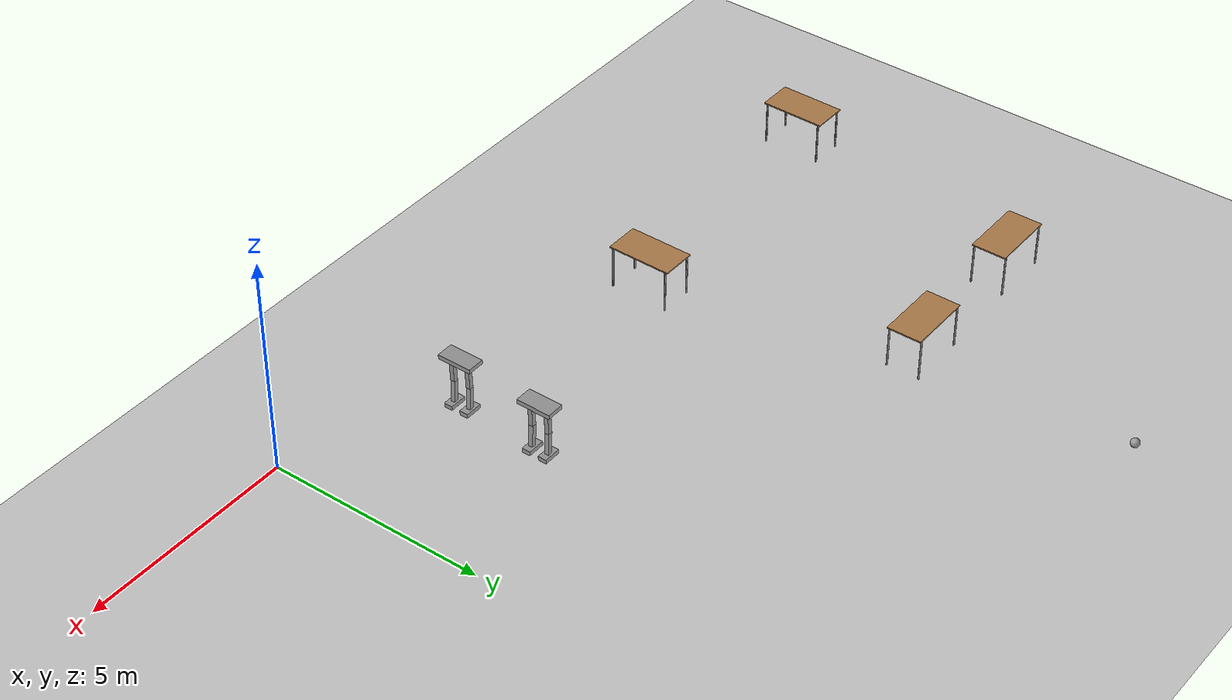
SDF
<sdf version="1.6">
 <world name="default">
  <model name="ground_plane">
   <static>1</static>
   <link name="link">
    <collision name="collision">
     <geometry><plane><normal>0 0 1</normal><size>100 100</size></plane></geometry>
     <surface>
      <contact><collide_bitmask>65535</collide_bitmask></contact>
      <friction><ode><mu>100</mu><mu2>50</mu2></ode></friction>
     </surface>
    </collision>
    <visual name="visual">
     <cast_shadows>0</cast_shadows>
     <geometry><plane><normal>0 0 1</normal><size>100 100</size></plane></geometry>
     <material>
      <script><uri>file://media/materials/scripts/gazebo.material</uri><name>Gazebo/Grey</name></script>
     </material>
    </visual>
   </link>
  </model>
  <model name="HumanoidRobot">
   <link name="link_0">
    <inertial>
     <mass>1</mass>
     <inertia>
      <ixx>0.166667</ixx>
      <ixy>0</ixy>
      <ixz>0</ixz>
      <iyy>0.166667</iyy>
      <iyz>0</iyz>
      <izz>0.166667</izz>
     </inertia>
    </inertial>
    <pose>0 0 1.2 0 -0 0</pose>
    <visual name="visual">
     <geometry><box><size>0.4 0.8 0.1</size></box></geometry>
     <material>
      <lighting>1</lighting>
      <script><uri>file://media/materials/scripts/gazebo.material</uri><name>Gazebo/Grey</name></script>
      <shader type="vertex"><normal_map>__default__</normal_map></shader>
      <ambient>0.3 0.3 0.3 1</ambient>
      <diffuse>0.7 0.7 0.7 1</diffuse>
      <specular>0.01 0.01 0.01 1</specular>
      <emissive>0 0 0 1</emissive>
     </material>
    </visual>
    <collision name="collision">
     <geometry><box><size>0.4 0.8 0.1</size></box></geometry>
     <surface>
      <friction>
       <ode><mu>1</mu><mu2>1</mu2><fdir1>0 0 0</fdir1><slip1>0</slip1><slip2>0</slip2></ode>
       <torsional>
        <coefficient>1</coefficient>
        <patch_radius>0</patch_radius>
        <surface_radius>0</surface_radius>
        <use_patch_radius>1</use_patch_radius>
        <ode><slip>0</slip></ode>
       </torsional>
      </friction>
      <bounce><restitution_coefficient>0</restitution_coefficient><threshold>1e+06</threshold></bounce>
      <contact>
       <collide_without_contact>0</collide_without_contact>
       <collide_without_contact_bitmask>1</collide_without_contact_bitmask>
       <collide_bitmask>1</collide_bitmask>
       <ode>
        <soft_cfm>0</soft_cfm>
        <soft_erp>0.2</soft_erp>
        <kp>1e+13</kp>
        <kd>1</kd>
        <max_vel>0.01</max_vel>
        <min_depth>0</min_depth>
       </ode>
       <bullet>
        <split_impulse>1</split_impulse>
        <split_impulse_penetration_threshold>-0.01</split_impulse_penetration_threshold>
        <soft_cfm>0</soft_cfm>
        <soft_erp>0.2</soft_erp>
        <kp>1e+13</kp>
        <kd>1</kd>
       </bullet>
      </contact>
     </surface>
    </collision>
   </link>
   <link name="link_0_clone">
    <inertial>
     <mass>1</mass>
     <inertia>
      <ixx>0.166667</ixx>
      <ixy>0</ixy>
      <ixz>0</ixz>
      <iyy>0.166667</iyy>
      <iyz>0</iyz>
      <izz>0.166667</izz>
     </inertia>
    </inertial>
    <pose>0 0.2 0 0 -0 0</pose>
    <visual name="visual">
     <geometry><box><size>0.4 0.2 0.1</size></box></geometry>
     <material>
      <lighting>1</lighting>
      <script><uri>file://media/materials/scripts/gazebo.material</uri><name>Gazebo/Grey</name></script>
      <shader type="vertex"><normal_map>__default__</normal_map></shader>
      <ambient>0.3 0.3 0.3 1</ambient>
      <diffuse>0.7 0.7 0.7 1</diffuse>
      <specular>0.01 0.01 0.01 1</specular>
      <emissive>0 0 0 1</emissive>
     </material>
    </visual>
    <collision name="collision">
     <geometry><box><size>0.4 0.2 0.1</size></box></geometry>
     <surface>
      <friction>
       <ode><mu>1</mu><mu2>1</mu2><fdir1>0 0 0</fdir1><slip1>0</slip1><slip2>0</slip2></ode>
       <torsional>
        <coefficient>1</coefficient>
        <patch_radius>0</patch_radius>
        <surface_radius>0</surface_radius>
        <use_patch_radius>1</use_patch_radius>
        <ode><slip>0</slip></ode>
       </torsional>
      </friction>
      <bounce><restitution_coefficient>0</restitution_coefficient><threshold>1e+06</threshold></bounce>
      <contact>
       <collide_without_contact>0</collide_without_contact>
       <collide_without_contact_bitmask>1</collide_without_contact_bitmask>
       <collide_bitmask>1</collide_bitmask>
       <ode>
        <soft_cfm>0</soft_cfm>
        <soft_erp>0.2</soft_erp>
        <kp>1e+13</kp>
        <kd>1</kd>
        <max_vel>0.01</max_vel>
        <min_depth>0</min_depth>
       </ode>
       <bullet>
        <split_impulse>1</split_impulse>
        <split_impulse_penetration_threshold>-0.01</split_impulse_penetration_threshold>
        <soft_cfm>0</soft_cfm>
        <soft_erp>0.2</soft_erp>
        <kp>1e+13</kp>
        <kd>1</kd>
       </bullet>
      </contact>
     </surface>
    </collision>
   </link>
   <link name="link_0_clone_clone">
    <inertial>
     <mass>1</mass>
     <inertia>
      <ixx>0.166667</ixx>
      <ixy>0</ixy>
      <ixz>0</ixz>
      <iyy>0.166667</iyy>
      <iyz>0</iyz>
      <izz>0.166667</izz>
     </inertia>
    </inertial>
    <pose>0 -0.2 0 0 -0 0</pose>
    <visual name="visual">
     <geometry><box><size>0.4 0.2 0.1</size></box></geometry>
     <material>
      <lighting>1</lighting>
      <script><uri>file://media/materials/scripts/gazebo.material</uri><name>Gazebo/Grey</name></script>
      <shader type="vertex"><normal_map>__default__</normal_map></shader>
      <ambient>0.3 0.3 0.3 1</ambient>
      <diffuse>0.7 0.7 0.7 1</diffuse>
      <specular>0.01 0.01 0.01 1</specular>
      <emissive>0 0 0 1</emissive>
     </material>
    </visual>
    <collision name="collision">
     <geometry><box><size>0.4 0.2 0.1</size></box></geometry>
     <surface>
      <friction>
       <ode><mu>1</mu><mu2>1</mu2><fdir1>0 0 0</fdir1><slip1>0</slip1><slip2>0</slip2></ode>
       <torsional>
        <coefficient>1</coefficient>
        <patch_radius>0</patch_radius>
        <surface_radius>0</surface_radius>
        <use_patch_radius>1</use_patch_radius>
        <ode><slip>0</slip></ode>
       </torsional>
      </friction>
      <bounce><restitution_coefficient>0</restitution_coefficient><threshold>1e+06</threshold></bounce>
      <contact>
       <collide_without_contact>0</collide_without_contact>
       <collide_without_contact_bitmask>1</collide_without_contact_bitmask>
       <collide_bitmask>1</collide_bitmask>
       <ode>
        <soft_cfm>0</soft_cfm>
        <soft_erp>0.2</soft_erp>
        <kp>1e+13</kp>
        <kd>1</kd>
        <max_vel>0.01</max_vel>
        <min_depth>0</min_depth>
       </ode>
       <bullet>
        <split_impulse>1</split_impulse>
        <split_impulse_penetration_threshold>-0.01</split_impulse_penetration_threshold>
        <soft_cfm>0</soft_cfm>
        <soft_erp>0.2</soft_erp>
        <kp>1e+13</kp>
        <kd>1</kd>
       </bullet>
      </contact>
     </surface>
    </collision>
   </link>
   <link name="link_1">
    <inertial>
     <mass>1</mass>
     <inertia>
      <ixx>0.166667</ixx>
      <ixy>0</ixy>
      <ixz>0</ixz>
      <iyy>0.166667</iyy>
      <iyz>0</iyz>
      <izz>0.166667</izz>
     </inertia>
    </inertial>
    <pose>0 0.2 0.86 0 0.05 0</pose>
    <visual name="visual">
     <geometry><box><size>0.1 0.1 0.6</size></box></geometry>
     <material>
      <lighting>1</lighting>
      <script><uri>file://media/materials/scripts/gazebo.material</uri><name>Gazebo/Grey</name></script>
      <shader type="vertex"><normal_map>__default__</normal_map></shader>
      <ambient>0.3 0.3 0.3 1</ambient>
      <diffuse>0.7 0.7 0.7 1</diffuse>
      <specular>0.01 0.01 0.01 1</specular>
      <emissive>0 0 0 1</emissive>
     </material>
    </visual>
    <collision name="collision">
     <geometry><box><size>0.1 0.1 0.6</size></box></geometry>
     <surface>
      <friction>
       <ode><mu>1</mu><mu2>1</mu2><fdir1>0 0 0</fdir1><slip1>0</slip1><slip2>0</slip2></ode>
       <torsional>
        <coefficient>1</coefficient>
        <patch_radius>0</patch_radius>
        <surface_radius>0</surface_radius>
        <use_patch_radius>1</use_patch_radius>
        <ode><slip>0</slip></ode>
       </torsional>
      </friction>
      <bounce><restitution_coefficient>0</restitution_coefficient><threshold>1e+06</threshold></bounce>
      <contact>
       <collide_without_contact>0</collide_without_contact>
       <collide_without_contact_bitmask>1</collide_without_contact_bitmask>
       <collide_bitmask>1</collide_bitmask>
       <ode>
        <soft_cfm>0</soft_cfm>
        <soft_erp>0.2</soft_erp>
        <kp>1e+13</kp>
        <kd>1</kd>
        <max_vel>0.01</max_vel>
        <min_depth>0</min_depth>
       </ode>
       <bullet>
        <split_impulse>1</split_impulse>
        <split_impulse_penetration_threshold>-0.01</split_impulse_penetration_threshold>
        <soft_cfm>0</soft_cfm>
        <soft_erp>0.2</soft_erp>
        <kp>1e+13</kp>
        <kd>1</kd>
       </bullet>
      </contact>
     </surface>
    </collision>
   </link>
   <link name="link_1_clone">
    <inertial>
     <mass>1</mass>
     <inertia>
      <ixx>0.166667</ixx>
      <ixy>0</ixy>
      <ixz>0</ixz>
      <iyy>0.166667</iyy>
      <iyz>0</iyz>
      <izz>0.166667</izz>
     </inertia>
    </inertial>
    <pose>0 -0.2 0.86 0 0.05 0</pose>
    <visual name="visual">
     <geometry><box><size>0.1 0.1 0.6</size></box></geometry>
     <material>
      <lighting>1</lighting>
      <script><uri>file://media/materials/scripts/gazebo.material</uri><name>Gazebo/Grey</name></script>
      <shader type="vertex"><normal_map>__default__</normal_map></shader>
      <ambient>0.3 0.3 0.3 1</ambient>
      <diffuse>0.7 0.7 0.7 1</diffuse>
      <specular>0.01 0.01 0.01 1</specular>
      <emissive>0 0 0 1</emissive>
     </material>
    </visual>
    <collision name="collision">
     <geometry><box><size>0.1 0.1 0.6</size></box></geometry>
     <surface>
      <friction>
       <ode><mu>1</mu><mu2>1</mu2><fdir1>0 0 0</fdir1><slip1>0</slip1><slip2>0</slip2></ode>
       <torsional>
        <coefficient>1</coefficient>
        <patch_radius>0</patch_radius>
        <surface_radius>0</surface_radius>
        <use_patch_radius>1</use_patch_radius>
        <ode><slip>0</slip></ode>
       </torsional>
      </friction>
      <bounce><restitution_coefficient>0</restitution_coefficient><threshold>1e+06</threshold></bounce>
      <contact>
       <collide_without_contact>0</collide_without_contact>
       <collide_without_contact_bitmask>1</collide_without_contact_bitmask>
       <collide_bitmask>1</collide_bitmask>
       <ode>
        <soft_cfm>0</soft_cfm>
        <soft_erp>0.2</soft_erp>
        <kp>1e+13</kp>
        <kd>1</kd>
        <max_vel>0.01</max_vel>
        <min_depth>0</min_depth>
       </ode>
       <bullet>
        <split_impulse>1</split_impulse>
        <split_impulse_penetration_threshold>-0.01</split_impulse_penetration_threshold>
        <soft_cfm>0</soft_cfm>
        <soft_erp>0.2</soft_erp>
        <kp>1e+13</kp>
        <kd>1</kd>
       </bullet>
      </contact>
     </surface>
    </collision>
   </link>
   <link name="link_1_clone_0">
    <inertial>
     <mass>1</mass>
     <inertia>
      <ixx>0.166667</ixx>
      <ixy>0</ixy>
      <ixz>0</ixz>
      <iyy>0.166667</iyy>
      <iyz>0</iyz>
      <izz>0.166667</izz>
     </inertia>
    </inertial>
    <pose>0 0.2 0.27 0 -0.05 0</pose>
    <visual name="visual">
     <geometry><box><size>0.1 0.1 0.6</size></box></geometry>
     <material>
      <lighting>1</lighting>
      <script><uri>file://media/materials/scripts/gazebo.material</uri><name>Gazebo/Grey</name></script>
      <shader type="vertex"><normal_map>__default__</normal_map></shader>
      <ambient>0.3 0.3 0.3 1</ambient>
      <diffuse>0.7 0.7 0.7 1</diffuse>
      <specular>0.01 0.01 0.01 1</specular>
      <emissive>0 0 0 1</emissive>
     </material>
    </visual>
    <collision name="collision">
     <geometry><box><size>0.1 0.1 0.6</size></box></geometry>
     <surface>
      <friction>
       <ode><mu>1</mu><mu2>1</mu2><fdir1>0 0 0</fdir1><slip1>0</slip1><slip2>0</slip2></ode>
       <torsional>
        <coefficient>1</coefficient>
        <patch_radius>0</patch_radius>
        <surface_radius>0</surface_radius>
        <use_patch_radius>1</use_patch_radius>
        <ode><slip>0</slip></ode>
       </torsional>
      </friction>
      <bounce><restitution_coefficient>0</restitution_coefficient><threshold>1e+06</threshold></bounce>
      <contact>
       <collide_without_contact>0</collide_without_contact>
       <collide_without_contact_bitmask>1</collide_without_contact_bitmask>
       <collide_bitmask>1</collide_bitmask>
       <ode>
        <soft_cfm>0</soft_cfm>
        <soft_erp>0.2</soft_erp>
        <kp>1e+13</kp>
        <kd>1</kd>
        <max_vel>0.01</max_vel>
        <min_depth>0</min_depth>
       </ode>
       <bullet>
        <split_impulse>1</split_impulse>
        <split_impulse_penetration_threshold>-0.01</split_impulse_penetration_threshold>
        <soft_cfm>0</soft_cfm>
        <soft_erp>0.2</soft_erp>
        <kp>1e+13</kp>
        <kd>1</kd>
       </bullet>
      </contact>
     </surface>
    </collision>
   </link>
   <link name="link_1_clone_0_clone">
    <inertial>
     <mass>1</mass>
     <inertia>
      <ixx>0.166667</ixx>
      <ixy>0</ixy>
      <ixz>0</ixz>
      <iyy>0.166667</iyy>
      <iyz>0</iyz>
      <izz>0.166667</izz>
     </inertia>
    </inertial>
    <pose>0 -0.2 0.27 0 -0.05 0</pose>
    <visual name="visual">
     <geometry><box><size>0.1 0.1 0.6</size></box></geometry>
     <material>
      <lighting>1</lighting>
      <script><uri>file://media/materials/scripts/gazebo.material</uri><name>Gazebo/Grey</name></script>
      <shader type="vertex"><normal_map>__default__</normal_map></shader>
      <ambient>0.3 0.3 0.3 1</ambient>
      <diffuse>0.7 0.7 0.7 1</diffuse>
      <specular>0.01 0.01 0.01 1</specular>
      <emissive>0 0 0 1</emissive>
     </material>
    </visual>
    <collision name="collision">
     <geometry><box><size>0.1 0.1 0.6</size></box></geometry>
     <surface>
      <friction>
       <ode><mu>1</mu><mu2>1</mu2><fdir1>0 0 0</fdir1><slip1>0</slip1><slip2>0</slip2></ode>
       <torsional>
        <coefficient>1</coefficient>
        <patch_radius>0</patch_radius>
        <surface_radius>0</surface_radius>
        <use_patch_radius>1</use_patch_radius>
        <ode><slip>0</slip></ode>
       </torsional>
      </friction>
      <bounce><restitution_coefficient>0</restitution_coefficient><threshold>1e+06</threshold></bounce>
      <contact>
       <collide_without_contact>0</collide_without_contact>
       <collide_without_contact_bitmask>1</collide_without_contact_bitmask>
       <collide_bitmask>1</collide_bitmask>
       <ode>
        <soft_cfm>0</soft_cfm>
        <soft_erp>0.2</soft_erp>
        <kp>1e+13</kp>
        <kd>1</kd>
        <max_vel>0.01</max_vel>
        <min_depth>0</min_depth>
       </ode>
       <bullet>
        <split_impulse>1</split_impulse>
        <split_impulse_penetration_threshold>-0.01</split_impulse_penetration_threshold>
        <soft_cfm>0</soft_cfm>
        <soft_erp>0.2</soft_erp>
        <kp>1e+13</kp>
        <kd>1</kd>
       </bullet>
      </contact>
     </surface>
    </collision>
   </link>
   <joint name="link_0_JOINT_0" type="fixed">
    <parent>link_0</parent>
    <child>link_1_clone</child>
    <physics>
     <ode><limit><cfm>0</cfm><erp>0.2</erp></limit><suspension><cfm>0</cfm><erp>0.2</erp></suspension></ode>
    </physics>
   </joint>
   <joint name="link_0_JOINT_1" type="fixed">
    <parent>link_0</parent>
    <child>link_1</child>
    <physics>
     <ode><limit><cfm>0</cfm><erp>0.2</erp></limit><suspension><cfm>0</cfm><erp>0.2</erp></suspension></ode>
    </physics>
   </joint>
   <joint name="link_1_JOINT_3" type="fixed">
    <parent>link_1</parent>
    <child>link_1_clone_0</child>
    <physics>
     <ode><limit><cfm>0</cfm><erp>0.2</erp></limit><suspension><cfm>0</cfm><erp>0.2</erp></suspension></ode>
    </physics>
   </joint>
   <joint name="link_1_clone_0_JOINT_5" type="fixed">
    <parent>link_1_clone_0</parent>
    <child>link_0_clone</child>
    <physics>
     <ode><limit><cfm>0</cfm><erp>0.2</erp></limit><suspension><cfm>0</cfm><erp>0.2</erp></suspension></ode>
    </physics>
   </joint>
   <joint name="link_1_clone_0_clone_JOINT_4" type="fixed">
    <parent>link_1_clone_0_clone</parent>
    <child>link_0_clone_clone</child>
    <physics>
     <ode><limit><cfm>0</cfm><erp>0.2</erp></limit><suspension><cfm>0</cfm><erp>0.2</erp></suspension></ode>
    </physics>
   </joint>
   <joint name="link_1_clone_JOINT_2" type="fixed">
    <parent>link_1_clone</parent>
    <child>link_1_clone_0_clone</child>
    <physics>
     <ode><limit><cfm>0</cfm><erp>0.2</erp></limit><suspension><cfm>0</cfm><erp>0.2</erp></suspension></ode>
    </physics>
   </joint>
   <static>0</static>
   <pose>-3.4409 3.80608 0.05 3e-06 -1e-06 -4.8e-05</pose>
  </model>
  <model name="HumanoidRobot_clone">
   <link name="link_0">
    <inertial>
     <mass>1</mass>
     <inertia>
      <ixx>0.166667</ixx>
      <ixy>0</ixy>
      <ixz>0</ixz>
      <iyy>0.166667</iyy>
      <iyz>0</iyz>
      <izz>0.166667</izz>
     </inertia>
    </inertial>
    <pose>0 0 1.2 0 -0 0</pose>
    <visual name="visual">
     <geometry><box><size>0.4 0.8 0.1</size></box></geometry>
     <material>
      <lighting>1</lighting>
      <script><uri>file://media/materials/scripts/gazebo.material</uri><name>Gazebo/Grey</name></script>
      <shader type="vertex"><normal_map>__default__</normal_map></shader>
      <ambient>0.3 0.3 0.3 1</ambient>
      <diffuse>0.7 0.7 0.7 1</diffuse>
      <specular>0.01 0.01 0.01 1</specular>
      <emissive>0 0 0 1</emissive>
     </material>
    </visual>
    <collision name="collision">
     <geometry><box><size>0.4 0.8 0.1</size></box></geometry>
     <surface>
      <friction>
       <ode><mu>1</mu><mu2>1</mu2><fdir1>0 0 0</fdir1><slip1>0</slip1><slip2>0</slip2></ode>
       <torsional>
        <coefficient>1</coefficient>
        <patch_radius>0</patch_radius>
        <surface_radius>0</surface_radius>
        <use_patch_radius>1</use_patch_radius>
        <ode><slip>0</slip></ode>
       </torsional>
      </friction>
      <bounce><restitution_coefficient>0</restitution_coefficient><threshold>1e+06</threshold></bounce>
      <contact>
       <collide_without_contact>0</collide_without_contact>
       <collide_without_contact_bitmask>1</collide_without_contact_bitmask>
       <collide_bitmask>1</collide_bitmask>
       <ode>
        <soft_cfm>0</soft_cfm>
        <soft_erp>0.2</soft_erp>
        <kp>1e+13</kp>
        <kd>1</kd>
        <max_vel>0.01</max_vel>
        <min_depth>0</min_depth>
       </ode>
       <bullet>
        <split_impulse>1</split_impulse>
        <split_impulse_penetration_threshold>-0.01</split_impulse_penetration_threshold>
        <soft_cfm>0</soft_cfm>
        <soft_erp>0.2</soft_erp>
        <kp>1e+13</kp>
        <kd>1</kd>
       </bullet>
      </contact>
     </surface>
    </collision>
   </link>
   <link name="link_0_clone">
    <inertial>
     <mass>1</mass>
     <inertia>
      <ixx>0.166667</ixx>
      <ixy>0</ixy>
      <ixz>0</ixz>
      <iyy>0.166667</iyy>
      <iyz>0</iyz>
      <izz>0.166667</izz>
     </inertia>
    </inertial>
    <pose>0 0.2 0 0 -0 0</pose>
    <visual name="visual">
     <geometry><box><size>0.4 0.2 0.1</size></box></geometry>
     <material>
      <lighting>1</lighting>
      <script><uri>file://media/materials/scripts/gazebo.material</uri><name>Gazebo/Grey</name></script>
      <shader type="vertex"><normal_map>__default__</normal_map></shader>
      <ambient>0.3 0.3 0.3 1</ambient>
      <diffuse>0.7 0.7 0.7 1</diffuse>
      <specular>0.01 0.01 0.01 1</specular>
      <emissive>0 0 0 1</emissive>
     </material>
    </visual>
    <collision name="collision">
     <geometry><box><size>0.4 0.2 0.1</size></box></geometry>
     <surface>
      <friction>
       <ode><mu>1</mu><mu2>1</mu2><fdir1>0 0 0</fdir1><slip1>0</slip1><slip2>0</slip2></ode>
       <torsional>
        <coefficient>1</coefficient>
        <patch_radius>0</patch_radius>
        <surface_radius>0</surface_radius>
        <use_patch_radius>1</use_patch_radius>
        <ode><slip>0</slip></ode>
       </torsional>
      </friction>
      <bounce><restitution_coefficient>0</restitution_coefficient><threshold>1e+06</threshold></bounce>
      <contact>
       <collide_without_contact>0</collide_without_contact>
       <collide_without_contact_bitmask>1</collide_without_contact_bitmask>
       <collide_bitmask>1</collide_bitmask>
       <ode>
        <soft_cfm>0</soft_cfm>
        <soft_erp>0.2</soft_erp>
        <kp>1e+13</kp>
        <kd>1</kd>
        <max_vel>0.01</max_vel>
        <min_depth>0</min_depth>
       </ode>
       <bullet>
        <split_impulse>1</split_impulse>
        <split_impulse_penetration_threshold>-0.01</split_impulse_penetration_threshold>
        <soft_cfm>0</soft_cfm>
        <soft_erp>0.2</soft_erp>
        <kp>1e+13</kp>
        <kd>1</kd>
       </bullet>
      </contact>
     </surface>
    </collision>
   </link>
   <link name="link_0_clone_clone">
    <inertial>
     <mass>1</mass>
     <inertia>
      <ixx>0.166667</ixx>
      <ixy>0</ixy>
      <ixz>0</ixz>
      <iyy>0.166667</iyy>
      <iyz>0</iyz>
      <izz>0.166667</izz>
     </inertia>
    </inertial>
    <pose>0 -0.2 0 0 -0 0</pose>
    <visual name="visual">
     <geometry><box><size>0.4 0.2 0.1</size></box></geometry>
     <material>
      <lighting>1</lighting>
      <script><uri>file://media/materials/scripts/gazebo.material</uri><name>Gazebo/Grey</name></script>
      <shader type="vertex"><normal_map>__default__</normal_map></shader>
      <ambient>0.3 0.3 0.3 1</ambient>
      <diffuse>0.7 0.7 0.7 1</diffuse>
      <specular>0.01 0.01 0.01 1</specular>
      <emissive>0 0 0 1</emissive>
     </material>
    </visual>
    <collision name="collision">
     <geometry><box><size>0.4 0.2 0.1</size></box></geometry>
     <surface>
      <friction>
       <ode><mu>1</mu><mu2>1</mu2><fdir1>0 0 0</fdir1><slip1>0</slip1><slip2>0</slip2></ode>
       <torsional>
        <coefficient>1</coefficient>
        <patch_radius>0</patch_radius>
        <surface_radius>0</surface_radius>
        <use_patch_radius>1</use_patch_radius>
        <ode><slip>0</slip></ode>
       </torsional>
      </friction>
      <bounce><restitution_coefficient>0</restitution_coefficient><threshold>1e+06</threshold></bounce>
      <contact>
       <collide_without_contact>0</collide_without_contact>
       <collide_without_contact_bitmask>1</collide_without_contact_bitmask>
       <collide_bitmask>1</collide_bitmask>
       <ode>
        <soft_cfm>0</soft_cfm>
        <soft_erp>0.2</soft_erp>
        <kp>1e+13</kp>
        <kd>1</kd>
        <max_vel>0.01</max_vel>
        <min_depth>0</min_depth>
       </ode>
       <bullet>
        <split_impulse>1</split_impulse>
        <split_impulse_penetration_threshold>-0.01</split_impulse_penetration_threshold>
        <soft_cfm>0</soft_cfm>
        <soft_erp>0.2</soft_erp>
        <kp>1e+13</kp>
        <kd>1</kd>
       </bullet>
      </contact>
     </surface>
    </collision>
   </link>
   <link name="link_1">
    <inertial>
     <mass>1</mass>
     <inertia>
      <ixx>0.166667</ixx>
      <ixy>0</ixy>
      <ixz>0</ixz>
      <iyy>0.166667</iyy>
      <iyz>0</iyz>
      <izz>0.166667</izz>
     </inertia>
    </inertial>
    <pose>0 0.2 0.86 0 0.05 0</pose>
    <visual name="visual">
     <geometry><box><size>0.1 0.1 0.6</size></box></geometry>
     <material>
      <lighting>1</lighting>
      <script><uri>file://media/materials/scripts/gazebo.material</uri><name>Gazebo/Grey</name></script>
      <shader type="vertex"><normal_map>__default__</normal_map></shader>
      <ambient>0.3 0.3 0.3 1</ambient>
      <diffuse>0.7 0.7 0.7 1</diffuse>
      <specular>0.01 0.01 0.01 1</specular>
      <emissive>0 0 0 1</emissive>
     </material>
    </visual>
    <collision name="collision">
     <geometry><box><size>0.1 0.1 0.6</size></box></geometry>
     <surface>
      <friction>
       <ode><mu>1</mu><mu2>1</mu2><fdir1>0 0 0</fdir1><slip1>0</slip1><slip2>0</slip2></ode>
       <torsional>
        <coefficient>1</coefficient>
        <patch_radius>0</patch_radius>
        <surface_radius>0</surface_radius>
        <use_patch_radius>1</use_patch_radius>
        <ode><slip>0</slip></ode>
       </torsional>
      </friction>
      <bounce><restitution_coefficient>0</restitution_coefficient><threshold>1e+06</threshold></bounce>
      <contact>
       <collide_without_contact>0</collide_without_contact>
       <collide_without_contact_bitmask>1</collide_without_contact_bitmask>
       <collide_bitmask>1</collide_bitmask>
       <ode>
        <soft_cfm>0</soft_cfm>
        <soft_erp>0.2</soft_erp>
        <kp>1e+13</kp>
        <kd>1</kd>
        <max_vel>0.01</max_vel>
        <min_depth>0</min_depth>
       </ode>
       <bullet>
        <split_impulse>1</split_impulse>
        <split_impulse_penetration_threshold>-0.01</split_impulse_penetration_threshold>
        <soft_cfm>0</soft_cfm>
        <soft_erp>0.2</soft_erp>
        <kp>1e+13</kp>
        <kd>1</kd>
       </bullet>
      </contact>
     </surface>
    </collision>
   </link>
   <link name="link_1_clone">
    <inertial>
     <mass>1</mass>
     <inertia>
      <ixx>0.166667</ixx>
      <ixy>0</ixy>
      <ixz>0</ixz>
      <iyy>0.166667</iyy>
      <iyz>0</iyz>
      <izz>0.166667</izz>
     </inertia>
    </inertial>
    <pose>0 -0.2 0.86 0 0.05 0</pose>
    <visual name="visual">
     <geometry><box><size>0.1 0.1 0.6</size></box></geometry>
     <material>
      <lighting>1</lighting>
      <script><uri>file://media/materials/scripts/gazebo.material</uri><name>Gazebo/Grey</name></script>
      <shader type="vertex"><normal_map>__default__</normal_map></shader>
      <ambient>0.3 0.3 0.3 1</ambient>
      <diffuse>0.7 0.7 0.7 1</diffuse>
      <specular>0.01 0.01 0.01 1</specular>
      <emissive>0 0 0 1</emissive>
     </material>
    </visual>
    <collision name="collision">
     <geometry><box><size>0.1 0.1 0.6</size></box></geometry>
     <surface>
      <friction>
       <ode><mu>1</mu><mu2>1</mu2><fdir1>0 0 0</fdir1><slip1>0</slip1><slip2>0</slip2></ode>
       <torsional>
        <coefficient>1</coefficient>
        <patch_radius>0</patch_radius>
        <surface_radius>0</surface_radius>
        <use_patch_radius>1</use_patch_radius>
        <ode><slip>0</slip></ode>
       </torsional>
      </friction>
      <bounce><restitution_coefficient>0</restitution_coefficient><threshold>1e+06</threshold></bounce>
      <contact>
       <collide_without_contact>0</collide_without_contact>
       <collide_without_contact_bitmask>1</collide_without_contact_bitmask>
       <collide_bitmask>1</collide_bitmask>
       <ode>
        <soft_cfm>0</soft_cfm>
        <soft_erp>0.2</soft_erp>
        <kp>1e+13</kp>
        <kd>1</kd>
        <max_vel>0.01</max_vel>
        <min_depth>0</min_depth>
       </ode>
       <bullet>
        <split_impulse>1</split_impulse>
        <split_impulse_penetration_threshold>-0.01</split_impulse_penetration_threshold>
        <soft_cfm>0</soft_cfm>
        <soft_erp>0.2</soft_erp>
        <kp>1e+13</kp>
        <kd>1</kd>
       </bullet>
      </contact>
     </surface>
    </collision>
   </link>
   <link name="link_1_clone_0">
    <inertial>
     <mass>1</mass>
     <inertia>
      <ixx>0.166667</ixx>
      <ixy>0</ixy>
      <ixz>0</ixz>
      <iyy>0.166667</iyy>
      <iyz>0</iyz>
      <izz>0.166667</izz>
     </inertia>
    </inertial>
    <pose>0 0.2 0.27 0 -0.05 0</pose>
    <visual name="visual">
     <geometry><box><size>0.1 0.1 0.6</size></box></geometry>
     <material>
      <lighting>1</lighting>
      <script><uri>file://media/materials/scripts/gazebo.material</uri><name>Gazebo/Grey</name></script>
      <shader type="vertex"><normal_map>__default__</normal_map></shader>
      <ambient>0.3 0.3 0.3 1</ambient>
      <diffuse>0.7 0.7 0.7 1</diffuse>
      <specular>0.01 0.01 0.01 1</specular>
      <emissive>0 0 0 1</emissive>
     </material>
    </visual>
    <collision name="collision">
     <geometry><box><size>0.1 0.1 0.6</size></box></geometry>
     <surface>
      <friction>
       <ode><mu>1</mu><mu2>1</mu2><fdir1>0 0 0</fdir1><slip1>0</slip1><slip2>0</slip2></ode>
       <torsional>
        <coefficient>1</coefficient>
        <patch_radius>0</patch_radius>
        <surface_radius>0</surface_radius>
        <use_patch_radius>1</use_patch_radius>
        <ode><slip>0</slip></ode>
       </torsional>
      </friction>
      <bounce><restitution_coefficient>0</restitution_coefficient><threshold>1e+06</threshold></bounce>
      <contact>
       <collide_without_contact>0</collide_without_contact>
       <collide_without_contact_bitmask>1</collide_without_contact_bitmask>
       <collide_bitmask>1</collide_bitmask>
       <ode>
        <soft_cfm>0</soft_cfm>
        <soft_erp>0.2</soft_erp>
        <kp>1e+13</kp>
        <kd>1</kd>
        <max_vel>0.01</max_vel>
        <min_depth>0</min_depth>
       </ode>
       <bullet>
        <split_impulse>1</split_impulse>
        <split_impulse_penetration_threshold>-0.01</split_impulse_penetration_threshold>
        <soft_cfm>0</soft_cfm>
        <soft_erp>0.2</soft_erp>
        <kp>1e+13</kp>
        <kd>1</kd>
       </bullet>
      </contact>
     </surface>
    </collision>
   </link>
   <link name="link_1_clone_0_clone">
    <inertial>
     <mass>1</mass>
     <inertia>
      <ixx>0.166667</ixx>
      <ixy>0</ixy>
      <ixz>0</ixz>
      <iyy>0.166667</iyy>
      <iyz>0</iyz>
      <izz>0.166667</izz>
     </inertia>
    </inertial>
    <pose>0 -0.2 0.27 0 -0.05 0</pose>
    <visual name="visual">
     <geometry><box><size>0.1 0.1 0.6</size></box></geometry>
     <material>
      <lighting>1</lighting>
      <script><uri>file://media/materials/scripts/gazebo.material</uri><name>Gazebo/Grey</name></script>
      <shader type="vertex"><normal_map>__default__</normal_map></shader>
      <ambient>0.3 0.3 0.3 1</ambient>
      <diffuse>0.7 0.7 0.7 1</diffuse>
      <specular>0.01 0.01 0.01 1</specular>
      <emissive>0 0 0 1</emissive>
     </material>
    </visual>
    <collision name="collision">
     <geometry><box><size>0.1 0.1 0.6</size></box></geometry>
     <surface>
      <friction>
       <ode><mu>1</mu><mu2>1</mu2><fdir1>0 0 0</fdir1><slip1>0</slip1><slip2>0</slip2></ode>
       <torsional>
        <coefficient>1</coefficient>
        <patch_radius>0</patch_radius>
        <surface_radius>0</surface_radius>
        <use_patch_radius>1</use_patch_radius>
        <ode><slip>0</slip></ode>
       </torsional>
      </friction>
      <bounce><restitution_coefficient>0</restitution_coefficient><threshold>1e+06</threshold></bounce>
      <contact>
       <collide_without_contact>0</collide_without_contact>
       <collide_without_contact_bitmask>1</collide_without_contact_bitmask>
       <collide_bitmask>1</collide_bitmask>
       <ode>
        <soft_cfm>0</soft_cfm>
        <soft_erp>0.2</soft_erp>
        <kp>1e+13</kp>
        <kd>1</kd>
        <max_vel>0.01</max_vel>
        <min_depth>0</min_depth>
       </ode>
       <bullet>
        <split_impulse>1</split_impulse>
        <split_impulse_penetration_threshold>-0.01</split_impulse_penetration_threshold>
        <soft_cfm>0</soft_cfm>
        <soft_erp>0.2</soft_erp>
        <kp>1e+13</kp>
        <kd>1</kd>
       </bullet>
      </contact>
     </surface>
    </collision>
   </link>
   <joint name="link_0_JOINT_0" type="fixed">
    <parent>link_0</parent>
    <child>link_1_clone</child>
    <physics>
     <ode><limit><cfm>0</cfm><erp>0.2</erp></limit><suspension><cfm>0</cfm><erp>0.2</erp></suspension></ode>
    </physics>
   </joint>
   <joint name="link_0_JOINT_1" type="fixed">
    <parent>link_0</parent>
    <child>link_1</child>
    <physics>
     <ode><limit><cfm>0</cfm><erp>0.2</erp></limit><suspension><cfm>0</cfm><erp>0.2</erp></suspension></ode>
    </physics>
   </joint>
   <joint name="link_1_JOINT_3" type="fixed">
    <parent>link_1</parent>
    <child>link_1_clone_0</child>
    <physics>
     <ode><limit><cfm>0</cfm><erp>0.2</erp></limit><suspension><cfm>0</cfm><erp>0.2</erp></suspension></ode>
    </physics>
   </joint>
   <joint name="link_1_clone_0_JOINT_5" type="fixed">
    <parent>link_1_clone_0</parent>
    <child>link_0_clone</child>
    <physics>
     <ode><limit><cfm>0</cfm><erp>0.2</erp></limit><suspension><cfm>0</cfm><erp>0.2</erp></suspension></ode>
    </physics>
   </joint>
   <joint name="link_1_clone_0_clone_JOINT_4" type="fixed">
    <parent>link_1_clone_0_clone</parent>
    <child>link_0_clone_clone</child>
    <physics>
     <ode><limit><cfm>0</cfm><erp>0.2</erp></limit><suspension><cfm>0</cfm><erp>0.2</erp></suspension></ode>
    </physics>
   </joint>
   <joint name="link_1_clone_JOINT_2" type="fixed">
    <parent>link_1_clone</parent>
    <child>link_1_clone_0_clone</child>
    <physics>
     <ode><limit><cfm>0</cfm><erp>0.2</erp></limit><suspension><cfm>0</cfm><erp>0.2</erp></suspension></ode>
    </physics>
   </joint>
   <static>0</static>
   <pose>-3.56739 1.71468 0.05 2e-06 -1e-06 -7.2e-05</pose>
  </model>
  <model name="table_clone_clone_2">
   <static>1</static>
   <link name="link">
    <collision name="surface">
     <pose>0 0 1 0 -0 0</pose>
     <geometry><box><size>1.5 0.8 0.03</size></box></geometry>
     <surface><friction><ode><mu>0.6</mu><mu2>0.6</mu2></ode></friction></surface>
    </collision>
    <visual name="visual1">
     <pose>0 0 1 0 -0 0</pose>
     <geometry><box><size>1.5 0.8 0.03</size></box></geometry>
     <material>
      <script><uri>file://media/materials/scripts/gazebo.material</uri><name>Gazebo/Wood</name></script>
     </material>
    </visual>
    <collision name="front_left_leg">
     <pose>0.68 0.38 0.5 0 -0 0</pose>
     <geometry><cylinder><radius>0.02</radius><length>1</length></cylinder></geometry>
    </collision>
    <visual name="front_left_leg">
     <pose>0.68 0.38 0.5 0 -0 0</pose>
     <geometry><cylinder><radius>0.02</radius><length>1</length></cylinder></geometry>
     <material>
      <script><uri>file://media/materials/scripts/gazebo.material</uri><name>Gazebo/Grey</name></script>
     </material>
    </visual>
    <collision name="front_right_leg">
     <pose>0.68 -0.38 0.5 0 -0 0</pose>
     <geometry><cylinder><radius>0.02</radius><length>1</length></cylinder></geometry>
    </collision>
    <visual name="front_right_leg">
     <pose>0.68 -0.38 0.5 0 -0 0</pose>
     <geometry><cylinder><radius>0.02</radius><length>1</length></cylinder></geometry>
     <material>
      <script><uri>file://media/materials/scripts/gazebo.material</uri><name>Gazebo/Grey</name></script>
     </material>
    </visual>
    <collision name="back_right_leg">
     <pose>-0.68 -0.38 0.5 0 -0 0</pose>
     <geometry><cylinder><radius>0.02</radius><length>1</length></cylinder></geometry>
    </collision>
    <visual name="back_right_leg">
     <pose>-0.68 -0.38 0.5 0 -0 0</pose>
     <geometry><cylinder><radius>0.02</radius><length>1</length></cylinder></geometry>
     <material>
      <script><uri>file://media/materials/scripts/gazebo.material</uri><name>Gazebo/Grey</name></script>
     </material>
    </visual>
    <collision name="back_left_leg">
     <pose>-0.68 0.38 0.5 0 -0 0</pose>
     <geometry><cylinder><radius>0.02</radius><length>1</length></cylinder></geometry>
    </collision>
    <visual name="back_left_leg">
     <pose>-0.68 0.38 0.5 0 -0 0</pose>
     <geometry><cylinder><radius>0.02</radius><length>1</length></cylinder></geometry>
     <material>
      <script><uri>file://media/materials/scripts/gazebo.material</uri><name>Gazebo/Grey</name></script>
     </material>
    </visual>
   </link>
   <pose>-15.2645 1.94656 0 0 -0 1.56371</pose>
  </model>
  <model name="table_clone_clone_3">
   <static>1</static>
   <link name="link">
    <collision name="surface">
     <pose>0 0 1 0 -0 0</pose>
     <geometry><box><size>1.5 0.8 0.03</size></box></geometry>
     <surface><friction><ode><mu>0.6</mu><mu2>0.6</mu2></ode></friction></surface>
    </collision>
    <visual name="visual1">
     <pose>0 0 1 0 -0 0</pose>
     <geometry><box><size>1.5 0.8 0.03</size></box></geometry>
     <material>
      <script><uri>file://media/materials/scripts/gazebo.material</uri><name>Gazebo/Wood</name></script>
     </material>
    </visual>
    <collision name="front_left_leg">
     <pose>0.68 0.38 0.5 0 -0 0</pose>
     <geometry><cylinder><radius>0.02</radius><length>1</length></cylinder></geometry>
    </collision>
    <visual name="front_left_leg">
     <pose>0.68 0.38 0.5 0 -0 0</pose>
     <geometry><cylinder><radius>0.02</radius><length>1</length></cylinder></geometry>
     <material>
      <script><uri>file://media/materials/scripts/gazebo.material</uri><name>Gazebo/Grey</name></script>
     </material>
    </visual>
    <collision name="front_right_leg">
     <pose>0.68 -0.38 0.5 0 -0 0</pose>
     <geometry><cylinder><radius>0.02</radius><length>1</length></cylinder></geometry>
    </collision>
    <visual name="front_right_leg">
     <pose>0.68 -0.38 0.5 0 -0 0</pose>
     <geometry><cylinder><radius>0.02</radius><length>1</length></cylinder></geometry>
     <material>
      <script><uri>file://media/materials/scripts/gazebo.material</uri><name>Gazebo/Grey</name></script>
     </material>
    </visual>
    <collision name="back_right_leg">
     <pose>-0.68 -0.38 0.5 0 -0 0</pose>
     <geometry><cylinder><radius>0.02</radius><length>1</length></cylinder></geometry>
    </collision>
    <visual name="back_right_leg">
     <pose>-0.68 -0.38 0.5 0 -0 0</pose>
     <geometry><cylinder><radius>0.02</radius><length>1</length></cylinder></geometry>
     <material>
      <script><uri>file://media/materials/scripts/gazebo.material</uri><name>Gazebo/Grey</name></script>
     </material>
    </visual>
    <collision name="back_left_leg">
     <pose>-0.68 0.38 0.5 0 -0 0</pose>
     <geometry><cylinder><radius>0.02</radius><length>1</length></cylinder></geometry>
    </collision>
    <visual name="back_left_leg">
     <pose>-0.68 0.38 0.5 0 -0 0</pose>
     <geometry><cylinder><radius>0.02</radius><length>1</length></cylinder></geometry>
     <material>
      <script><uri>file://media/materials/scripts/gazebo.material</uri><name>Gazebo/Grey</name></script>
     </material>
    </visual>
   </link>
   <pose>-8.9178 2.40887 0 0 -0 1.56371</pose>
  </model>
  <model name="table_clone_4">
   <static>1</static>
   <link name="link">
    <collision name="surface">
     <pose>0 0 1 0 -0 0</pose>
     <geometry><box><size>1.5 0.8 0.03</size></box></geometry>
     <surface><friction><ode><mu>0.6</mu><mu2>0.6</mu2></ode></friction></surface>
    </collision>
    <visual name="visual1">
     <pose>0 0 1 0 -0 0</pose>
     <geometry><box><size>1.5 0.8 0.03</size></box></geometry>
     <material>
      <script><uri>file://media/materials/scripts/gazebo.material</uri><name>Gazebo/Wood</name></script>
     </material>
    </visual>
    <collision name="front_left_leg">
     <pose>0.68 0.38 0.5 0 -0 0</pose>
     <geometry><cylinder><radius>0.02</radius><length>1</length></cylinder></geometry>
    </collision>
    <visual name="front_left_leg">
     <pose>0.68 0.38 0.5 0 -0 0</pose>
     <geometry><cylinder><radius>0.02</radius><length>1</length></cylinder></geometry>
     <material>
      <script><uri>file://media/materials/scripts/gazebo.material</uri><name>Gazebo/Grey</name></script>
     </material>
    </visual>
    <collision name="front_right_leg">
     <pose>0.68 -0.38 0.5 0 -0 0</pose>
     <geometry><cylinder><radius>0.02</radius><length>1</length></cylinder></geometry>
    </collision>
    <visual name="front_right_leg">
     <pose>0.68 -0.38 0.5 0 -0 0</pose>
     <geometry><cylinder><radius>0.02</radius><length>1</length></cylinder></geometry>
     <material>
      <script><uri>file://media/materials/scripts/gazebo.material</uri><name>Gazebo/Grey</name></script>
     </material>
    </visual>
    <collision name="back_right_leg">
     <pose>-0.68 -0.38 0.5 0 -0 0</pose>
     <geometry><cylinder><radius>0.02</radius><length>1</length></cylinder></geometry>
    </collision>
    <visual name="back_right_leg">
     <pose>-0.68 -0.38 0.5 0 -0 0</pose>
     <geometry><cylinder><radius>0.02</radius><length>1</length></cylinder></geometry>
     <material>
      <script><uri>file://media/materials/scripts/gazebo.material</uri><name>Gazebo/Grey</name></script>
     </material>
    </visual>
    <collision name="back_left_leg">
     <pose>-0.68 0.38 0.5 0 -0 0</pose>
     <geometry><cylinder><radius>0.02</radius><length>1</length></cylinder></geometry>
    </collision>
    <visual name="back_left_leg">
     <pose>-0.68 0.38 0.5 0 -0 0</pose>
     <geometry><cylinder><radius>0.02</radius><length>1</length></cylinder></geometry>
     <material>
      <script><uri>file://media/materials/scripts/gazebo.material</uri><name>Gazebo/Grey</name></script>
     </material>
    </visual>
   </link>
   <pose>-13.9162 8.05816 0 0 -0 0</pose>
  </model>
  <model name="table_clone_5">
   <static>1</static>
   <link name="link">
    <collision name="surface">
     <pose>0 0 1 0 -0 0</pose>
     <geometry><box><size>1.5 0.8 0.03</size></box></geometry>
     <surface><friction><ode><mu>0.6</mu><mu2>0.6</mu2></ode></friction></surface>
    </collision>
    <visual name="visual1">
     <pose>0 0 1 0 -0 0</pose>
     <geometry><box><size>1.5 0.8 0.03</size></box></geometry>
     <material>
      <script><uri>file://media/materials/scripts/gazebo.material</uri><name>Gazebo/Wood</name></script>
     </material>
    </visual>
    <collision name="front_left_leg">
     <pose>0.68 0.38 0.5 0 -0 0</pose>
     <geometry><cylinder><radius>0.02</radius><length>1</length></cylinder></geometry>
    </collision>
    <visual name="front_left_leg">
     <pose>0.68 0.38 0.5 0 -0 0</pose>
     <geometry><cylinder><radius>0.02</radius><length>1</length></cylinder></geometry>
     <material>
      <script><uri>file://media/materials/scripts/gazebo.material</uri><name>Gazebo/Grey</name></script>
     </material>
    </visual>
    <collision name="front_right_leg">
     <pose>0.68 -0.38 0.5 0 -0 0</pose>
     <geometry><cylinder><radius>0.02</radius><length>1</length></cylinder></geometry>
    </collision>
    <visual name="front_right_leg">
     <pose>0.68 -0.38 0.5 0 -0 0</pose>
     <geometry><cylinder><radius>0.02</radius><length>1</length></cylinder></geometry>
     <material>
      <script><uri>file://media/materials/scripts/gazebo.material</uri><name>Gazebo/Grey</name></script>
     </material>
    </visual>
    <collision name="back_right_leg">
     <pose>-0.68 -0.38 0.5 0 -0 0</pose>
     <geometry><cylinder><radius>0.02</radius><length>1</length></cylinder></geometry>
    </collision>
    <visual name="back_right_leg">
     <pose>-0.68 -0.38 0.5 0 -0 0</pose>
     <geometry><cylinder><radius>0.02</radius><length>1</length></cylinder></geometry>
     <material>
      <script><uri>file://media/materials/scripts/gazebo.material</uri><name>Gazebo/Grey</name></script>
     </material>
    </visual>
    <collision name="back_left_leg">
     <pose>-0.68 0.38 0.5 0 -0 0</pose>
     <geometry><cylinder><radius>0.02</radius><length>1</length></cylinder></geometry>
    </collision>
    <visual name="back_left_leg">
     <pose>-0.68 0.38 0.5 0 -0 0</pose>
     <geometry><cylinder><radius>0.02</radius><length>1</length></cylinder></geometry>
     <material>
      <script><uri>file://media/materials/scripts/gazebo.material</uri><name>Gazebo/Grey</name></script>
     </material>
    </visual>
   </link>
   <pose>-10.5112 8.135 0 0 -0 0</pose>
  </model>
  <model name="my_ball">
   <link name="link">
    <inertial>
     <mass>1</mass>
     <inertia><ixx>0.1</ixx><ixy>0</ixy><ixz>0</ixz><iyy>0.1</iyy><iyz>0</iyz><izz>0.1</izz></inertia>
    </inertial>
    <visual name="visual">
     <geometry><sphere><radius>0.1</radius></sphere></geometry>
     <material>
      <script><name>Gazebo/Grey</name><uri>file://media/materials/scripts/gazebo.material</uri></script>
      <shader type="pixel"><normal_map>__default__</normal_map></shader>
      <ambient>1 1 1 1</ambient>
      <diffuse>1 1 1 1</diffuse>
      <specular>1 1 1 1</specular>
      <emissive>1 1 1 1</emissive>
     </material>
    </visual>
    <collision name="collision">
     <geometry><sphere><radius>0.1</radius></sphere></geometry>
     <surface>
      <friction>
       <ode><mu>1</mu><mu2>1</mu2><fdir1>0 0 0</fdir1><slip1>0</slip1><slip2>0</slip2></ode>
       <torsional>
        <coefficient>1</coefficient>
        <patch_radius>0</patch_radius>
        <surface_radius>0</surface_radius>
        <use_patch_radius>1</use_patch_radius>
        <ode><slip>0</slip></ode>
       </torsional>
      </friction>
      <bounce><restitution_coefficient>0</restitution_coefficient><threshold>1e+06</threshold></bounce>
      <contact>
       <collide_without_contact>0</collide_without_contact>
       <collide_without_contact_bitmask>1</collide_without_contact_bitmask>
       <collide_bitmask>1</collide_bitmask>
       <ode>
        <soft_cfm>0</soft_cfm>
        <soft_erp>0.2</soft_erp>
        <kp>1e+13</kp>
        <kd>1</kd>
        <max_vel>0.01</max_vel>
        <min_depth>0</min_depth>
       </ode>
       <bullet>
        <split_impulse>1</split_impulse>
        <split_impulse_penetration_threshold>-0.01</split_impulse_penetration_threshold>
        <soft_cfm>0</soft_cfm>
        <soft_erp>0.2</soft_erp>
        <kp>1e+13</kp>
        <kd>1</kd>
       </bullet>
      </contact>
     </surface>
    </collision>
   </link>
   <static>0</static>
   <pose>-10.2131 13.2029 0.5 0 -0 0</pose>
  </model>
 </world>
</sdf>
